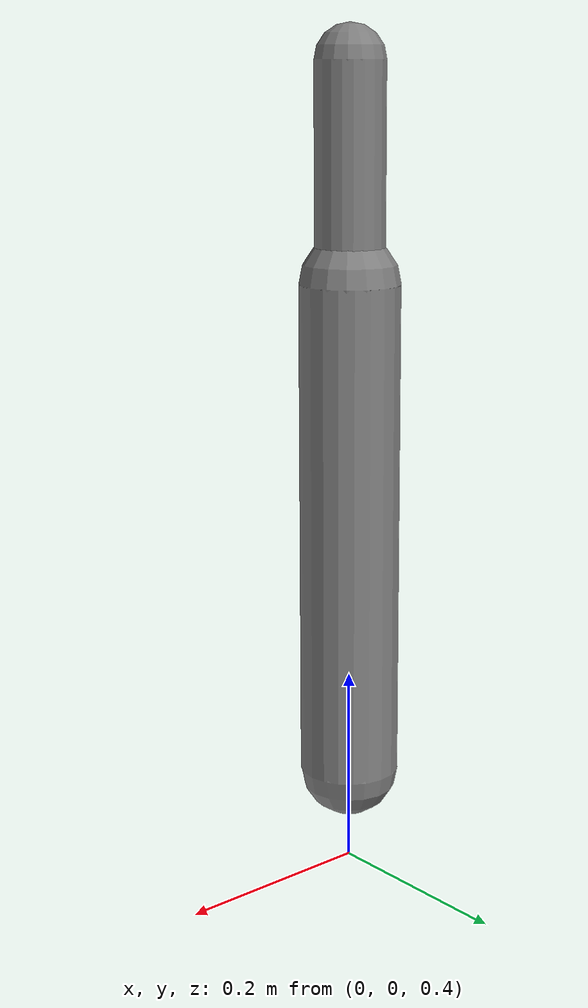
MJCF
<?xml version='1.0' encoding='UTF-8'?>
<mujoco model="RobotModel">
  <option gravity="0 0 -9.81" timestep="0.002" solver="CG" iterations="500" integrator="Euler"/>
  <worldbody>
    <geom name="Floor" type="plane" size="10 10 0.1" pos="0 0 0" rgba="0.8 0.8 0.8 1"/>
    <body name="Limb0" pos="0 0 0.5">
      <geom type="capsule" fromto="0 0 0 0 0 0.5" size="0.05" density="1000" contype="0" conaffinity="0"/>
      <body name="Limb0_482ecc9a" pos="0 0 0.5">
        <geom type="capsule" fromto="0 0 0 0 0 0.15784203784901477" size="0.011633090463873843" density="800" contype="0" conaffinity="0"/>
        <joint name="Joint_Limb0_Limb0_482ecc9a_0" type="hinge" axis="1 0 0" range="-60 60"/>
      </body>
      <body name="Limb1_482ecc9a" pos="0 0 0.5">
        <geom type="capsule" fromto="0 0 0 0 0 0.21113400275209745" size="0.03463975689033244" density="800" contype="0" conaffinity="0"/>
        <joint name="Joint_Limb0_Limb1_482ecc9a_0" type="hinge" axis="0 1 0" range="-60 60"/>
      </body>
    </body>
  </worldbody>
  <actuator>
    <position name="position_Actuator_Joint_Limb0_Limb0_482ecc9a_0" joint="Joint_Limb0_Limb0_482ecc9a_0" gear="1.0"/>
    <position name="position_Actuator_Joint_Limb0_Limb1_482ecc9a_0" joint="Joint_Limb0_Limb1_482ecc9a_0" gear="1.0"/>
  </actuator>
</mujoco>
